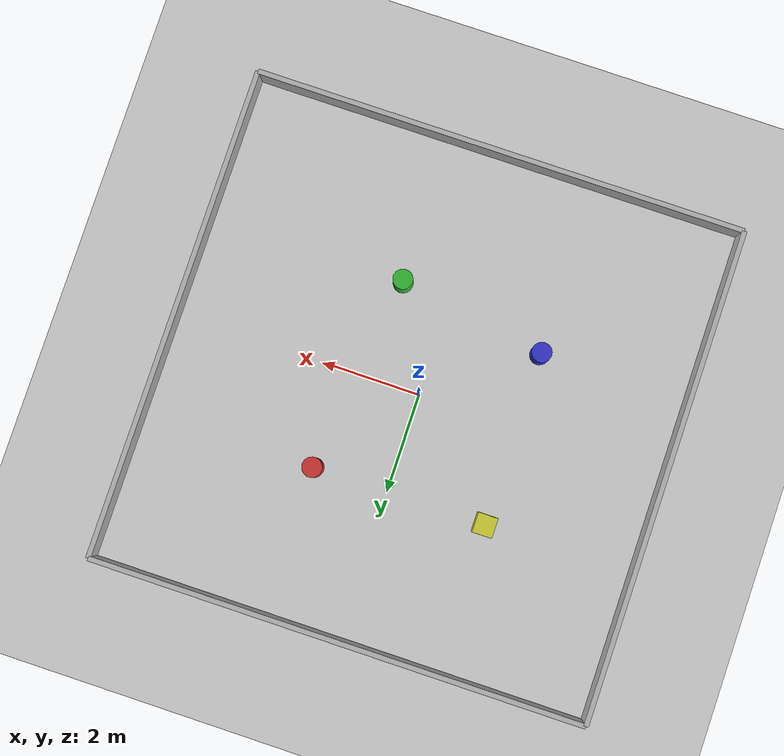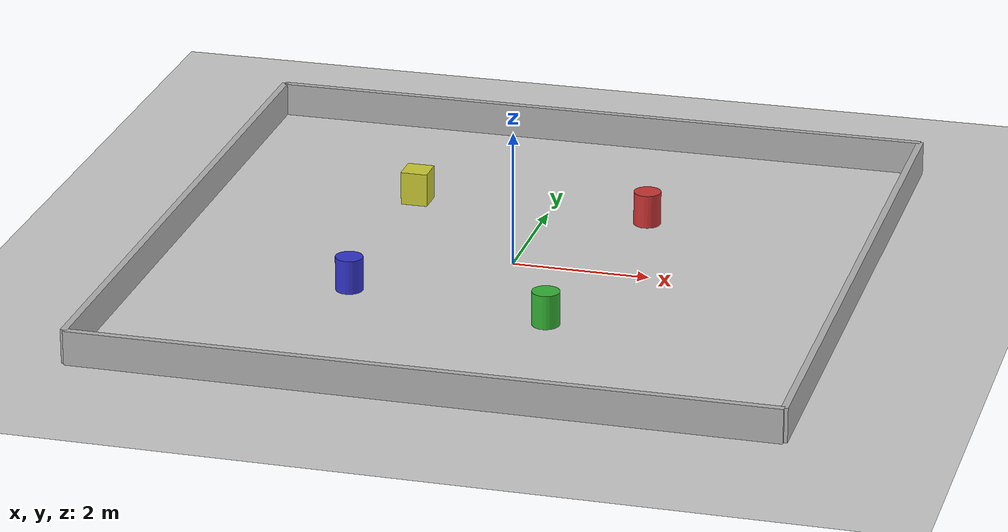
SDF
<?xml version="1.0" ?>

<sdf version="1.10">
	<world name="example_world">

		<!-- Physics parameter -->
		<physics name="1ms" type="ignored">
			<max_step_size>0.001</max_step_size>
			<real_time_factor>1.0</real_time_factor>
		</physics>

		<!-- Plugins -->
		<!-- General -->
		<plugin filename="gz-sim-physics-system" name="gz::sim::systems::Physics"></plugin>
		<plugin filename="gz-sim-scene-broadcaster-system" name="gz::sim::systems::SceneBroadcaster"></plugin>
		<plugin filename="gz-sim-user-commands-system" name="gz::sim::systems::UserCommands"></plugin>
		<!-- Sensors -->
		<plugin filename="gz-sim-imu-system" name="gz::sim::systems::Imu"></plugin>
		<plugin filename="gz-sim-sensors-system" name="gz::sim::systems::Sensors">
			<render_engine>ogre2</render_engine>
		</plugin>

		<light type="directional" name="sun">
			<cast_shadows>true</cast_shadows>
			<pose>0 0 10 0 0 0</pose>
			<diffuse>0.8 0.8 0.8 1</diffuse>
			<specular>0.2 0.2 0.2 1</specular>
			<attenuation>
				<range>1000</range>
				<constant>0.9</constant>
				<linear>0.01</linear>
				<quadratic>0.001</quadratic>
			</attenuation>
			<direction>-0.5 0.1 -0.9</direction>
		</light>

		<model name="ground_plane">
			<static>true</static>
			<link name="link">
				<collision name="collision">
					<geometry>
						<plane>
							<normal>0 0 1</normal>
							<size>100 100</size>
						</plane>
					</geometry>
				</collision>
				<visual name="visual">
					<geometry>
						<plane>
							<normal>0 0 1</normal>
							<size>100 100</size>
						</plane>
					</geometry>
					<material>
						<ambient>0.8 0.8 0.8 1</ambient>
						<diffuse>0.8 0.8 0.8 1</diffuse>
						<specular>0.8 0.8 0.8 1</specular>
					</material>
				</visual>
			</link>
		</model>

		<model name="wall_north">
			<static>true</static>
			<pose>0 5 0.25 0 0 0</pose>
			<link name="link">
				<collision name="collision">
					<geometry><box><size>10 0.1 0.5</size></box></geometry>
				</collision>
				<visual name="visual">
					<geometry><box><size>10 0.1 0.5</size></box></geometry>
					<material>
						<ambient>0.5 0.5 0.5 1</ambient>
						<diffuse>0.7 0.7 0.7 1</diffuse>
					</material>
				</visual>
			</link>
		</model>

		<model name="wall_south">
			<static>true</static>
			<pose>0 -5 0.25 0 0 0</pose>
			<link name="link">
				<collision name="collision">
					<geometry><box><size>10 0.1 0.5</size></box></geometry>
				</collision>
				<visual name="visual">
					<geometry><box><size>10 0.1 0.5</size></box></geometry>
					<material>
						<ambient>0.5 0.5 0.5 1</ambient>
						<diffuse>0.7 0.7 0.7 1</diffuse>
					</material>
				</visual>
			</link>
		</model>

		<model name="wall_east">
			<static>true</static>
			<pose>5 0 0.25 0 0 0</pose>
			<link name="link">
				<collision name="collision">
					<geometry><box><size>0.1 10 0.5</size></box></geometry>
				</collision>
				<visual name="visual">
					<geometry><box><size>0.1 10 0.5</size></box></geometry>
					<material>
						<ambient>0.5 0.5 0.5 1</ambient>
						<diffuse>0.7 0.7 0.7 1</diffuse>
					</material>
				</visual>
			</link>
		</model>

		<model name="wall_west">
			<static>true</static>
			<pose>-5 0 0.25 0 0 0</pose>
			<link name="link">
				<collision name="collision">
					<geometry><box><size>0.1 10 0.5</size></box></geometry>
				</collision>
				<visual name="visual">
					<geometry><box><size>0.1 10 0.5</size></box></geometry>
					<material>
						<ambient>0.5 0.5 0.5 1</ambient>
						<diffuse>0.7 0.7 0.7 1</diffuse>
					</material>
				</visual>
			</link>
		</model>

		<model name="pillar_ne">
			<static>true</static>
			<pose>1.5 2.0 0.25 0 0 0</pose>
			<link name="link">
				<collision name="collision">
					<geometry><cylinder><radius>0.2</radius><length>0.5</length></cylinder></geometry>
				</collision>
				<visual name="visual">
					<geometry><cylinder><radius>0.2</radius><length>0.5</length></cylinder></geometry>
					<material>
						<ambient>0.6 0.2 0.2 1</ambient>
						<diffuse>0.8 0.2 0.2 1</diffuse>
					</material>
				</visual>
			</link>
		</model>

		<model name="pillar_se">
			<static>true</static>
			<pose>1.0 -2.0 0.25 0 0 0</pose>
			<link name="link">
				<collision name="collision">
					<geometry><cylinder><radius>0.2</radius><length>0.5</length></cylinder></geometry>
				</collision>
				<visual name="visual">
					<geometry><cylinder><radius>0.2</radius><length>0.5</length></cylinder></geometry>
					<material>
						<ambient>0.2 0.5 0.2 1</ambient>
						<diffuse>0.2 0.7 0.2 1</diffuse>
					</material>
				</visual>
			</link>
		</model>

		<model name="pillar_sw">
			<static>true</static>
			<pose>-2.0 -1.5 0.25 0 0 0</pose>
			<link name="link">
				<collision name="collision">
					<geometry><cylinder><radius>0.2</radius><length>0.5</length></cylinder></geometry>
				</collision>
				<visual name="visual">
					<geometry><cylinder><radius>0.2</radius><length>0.5</length></cylinder></geometry>
					<material>
						<ambient>0.2 0.2 0.6 1</ambient>
						<diffuse>0.2 0.2 0.8 1</diffuse>
					</material>
				</visual>
			</link>
		</model>

		<model name="box_nw">
			<static>true</static>
			<pose>-2.0 2.0 0.25 0 0 0</pose>
			<link name="link">
				<collision name="collision">
					<geometry><box><size>0.4 0.4 0.5</size></box></geometry>
				</collision>
				<visual name="visual">
					<geometry><box><size>0.4 0.4 0.5</size></box></geometry>
					<material>
						<ambient>0.6 0.6 0.2 1</ambient>
						<diffuse>0.8 0.8 0.2 1</diffuse>
					</material>
				</visual>
			</link>
		</model>
	</world>
</sdf>
